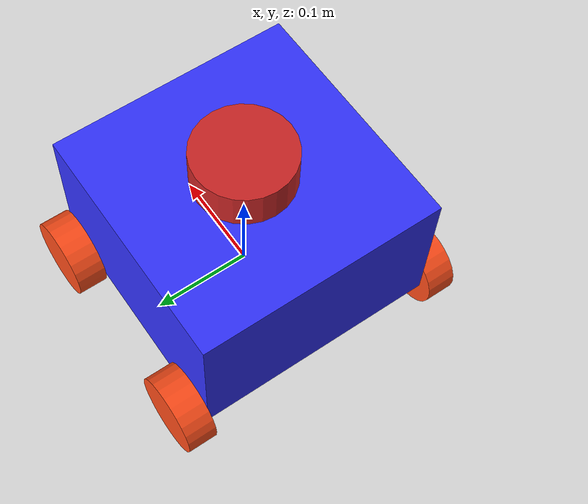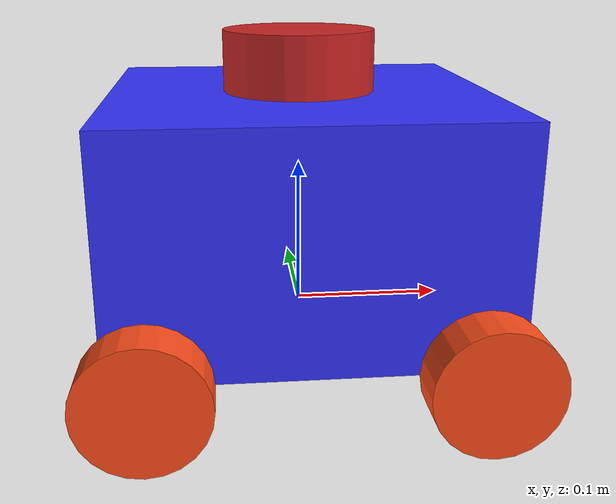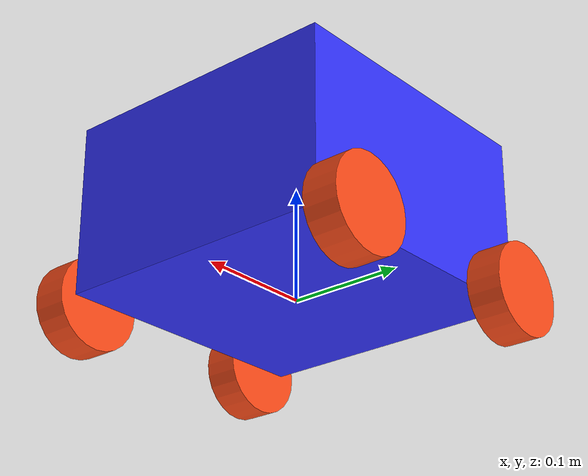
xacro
<?xml version="1.0"?>
<robot xmlns:xacro="http://www.ros.org/wiki/xacro"  name="robot">

    <xacro:include filename="robot_core.xacro" />
    <xacro:include filename="ros2_control.xacro" />
    <xacro:include filename="lidar.xacro" />

</robot>

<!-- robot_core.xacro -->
<robot xmlns:xacro="http://www.ros.org/wiki/xacro">

    <xacro:include filename="inertial_macros.xacro"/>

    <material name="white">
        <color rgba="1 1 1 1" />
    </material>

    <material name="orange">
        <color rgba="1 0.3 0.1 1"/>
    </material>

    <material name="blue">
        <color rgba="0.2 0.2 1 1"/>
    </material>

    <material name="black">
        <color rgba="0 0 0 1"/>
    </material>

    <!-- BASE LINK -->

    <link name="base_link">

    </link>

    <joint name="base_footprint_joint" type="fixed">
        <parent link="base_link"/>
        <child link="base_footprint"/>
        <origin xyz="0 0 0" rpy="0 0 0"/>
    </joint>

    <link name="base_footprint">
    </link>

    <joint name="chassis_joint" type="fixed">
        <parent link="base_link"/>
        <child link="chassis"/>
        <origin xyz="0 0 0"/>
    </joint>

    <link name="chassis">
        <visual>
            <origin xyz="0 0 0.075"/>
            <geometry>
                <box size="0.25 0.25 0.15"/>
            </geometry>
            <material name="blue"/>
        </visual>
        <collision>
            <origin xyz="0 0 0.075"/>
            <geometry>
                <box size="0.25 0.25 0.15"/>
            </geometry>
        </collision>
        <xacro:inertial_box mass="0.5" x="0.25" y="0.25" z="0.15">
            <origin xyz="0 0 0.075" rpy="0 0 0"/>
        </xacro:inertial_box>
    </link>

    <!-- LEFT FRONT WHEEL LINK -->

    <joint name="left_front_wheel_joint" type="continuous">
        <parent link="base_link"/>
        <child link="left_front_wheel"/>
        <origin xyz="0.1 0.14 0" rpy="-${pi/2} 0 0" />
        <axis xyz="0 0 1"/>
    </joint>

    <link name="left_front_wheel">
        <visual>
            <geometry>
                <cylinder radius="0.04" length="0.03"/>
            </geometry>
            <material name="orange"/>
        </visual>
        <collision>
            <geometry>
                <cylinder radius="0.04" length="0.03"/>
            </geometry>
        </collision>
        <xacro:inertial_cylinder mass="0.1" length="0.03" radius="0.04">
            <origin xyz="0 0 0" rpy="0 0 0"/>
        </xacro:inertial_cylinder>

    </link>

    <!-- RIGHT WHEEL LINK -->

    <joint name="right_front_wheel_joint" type="continuous">
        <parent link="base_link"/>
        <child link="right_front_wheel"/>
        <origin xyz="0.1 -0.14 0" rpy="${pi/2} 0 0" />
        <axis xyz="0 0 -1"/>
    </joint>

    <link name="right_front_wheel">
        <visual>
            <geometry>
                <cylinder radius="0.04" length="0.03"/>
            </geometry>
            <material name="orange"/>
        </visual>
        <collision>
            <geometry>
                <cylinder radius="0.04" length="0.03"/>
            </geometry>
        </collision>
        <xacro:inertial_cylinder mass="0.1" length="0.03" radius="0.04">
            <origin xyz="0 0 0" rpy="0 0 0"/>
        </xacro:inertial_cylinder>

    </link>

    <!-- LEFT BACK WHEEL LINK -->

    <joint name="left_back_wheel_joint" type="continuous">
        <parent link="base_link"/>
        <child link="left_back_wheel"/>
        <origin xyz="-0.1 0.14 0" rpy="-${pi/2} 0 0" />
        <axis xyz="0 0 1"/>
    </joint>

    <link name="left_back_wheel">
        <visual>
            <geometry>
                <cylinder radius="0.04" length="0.03"/>
            </geometry>
            <material name="orange"/>
        </visual>
        <collision>
            <geometry>
                <cylinder radius="0.04" length="0.03"/>
            </geometry>
        </collision>
        <xacro:inertial_cylinder mass="0.1" length="0.03" radius="0.04">
            <origin xyz="0 0 0" rpy="0 0 0"/>
        </xacro:inertial_cylinder>

    </link>

    <!-- RIGHT BACK WHEEL LINK -->

    <joint name="right_back_wheel_joint" type="continuous">
        <parent link="base_link"/>
        <child link="right_back_wheel"/>
        <origin xyz="-0.1 -0.14 0" rpy="${pi/2} 0 0" />
        <axis xyz="0 0 -1"/>
    </joint>

    <link name="right_back_wheel">
        <visual>
            <geometry>
                <cylinder radius="0.04" length="0.03"/>
            </geometry>
            <material name="orange"/>
        </visual>
        <collision>
            <geometry>
                <cylinder radius="0.04" length="0.03"/>
            </geometry>
        </collision>
        <xacro:inertial_cylinder mass="0.1" length="0.03" radius="0.04">
            <origin xyz="0 0 0" rpy="0 0 0"/>
        </xacro:inertial_cylinder>

    </link>
</robot>

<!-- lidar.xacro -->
<robot xmlns:xacro="http://www.ros.org/wiki/xacro" >

    <joint name="laser_joint" type="fixed">
        <parent link="chassis"/>
        <child link="laser_frame"/>
        <origin xyz="0 0 0.17" rpy="0 0 0"/>
    </joint>

    <link name="laser_frame">
        <visual>
            <geometry>
                <cylinder radius="0.05" length="0.04"/>
            </geometry>
            <material name="red"/>
        </visual>
        <collision>
            <geometry>
                <cylinder radius="0.05" length="0.04"/>
            </geometry>
        </collision>
        <xacro:inertial_cylinder mass="0.1" length="0.04" radius="0.05">
            <origin xyz="0 0 0" rpy="0 0 0"/>
        </xacro:inertial_cylinder>
    </link>

    <gazebo reference="laser_frame">
        <material>Gazebo/Red</material>

        <sensor name="laser" type="ray">
            <pose> 0 0 0 0 0 0 </pose>
            <visualize>true</visualize>
            <update_rate>10</update_rate>
            <ray>
                <scan>
                    <horizontal>
                        <samples>360</samples>
                        <min_angle>-3.14</min_angle>
                        <max_angle>3.14</max_angle>
                    </horizontal>
                </scan>
                <range>
                    <min>0.3</min>
                    <max>12</max>
                </range>
            </ray>
            <plugin name="laser_controller" filename="libgazebo_ros_ray_sensor.so">
                <ros>
                    <argument>~/out:=scan</argument>
                </ros>
                <output_type>sensor_msgs/LaserScan</output_type>
                <frame_name>laser_frame</frame_name>
            </plugin>
        </sensor>
    </gazebo>

</robot>
